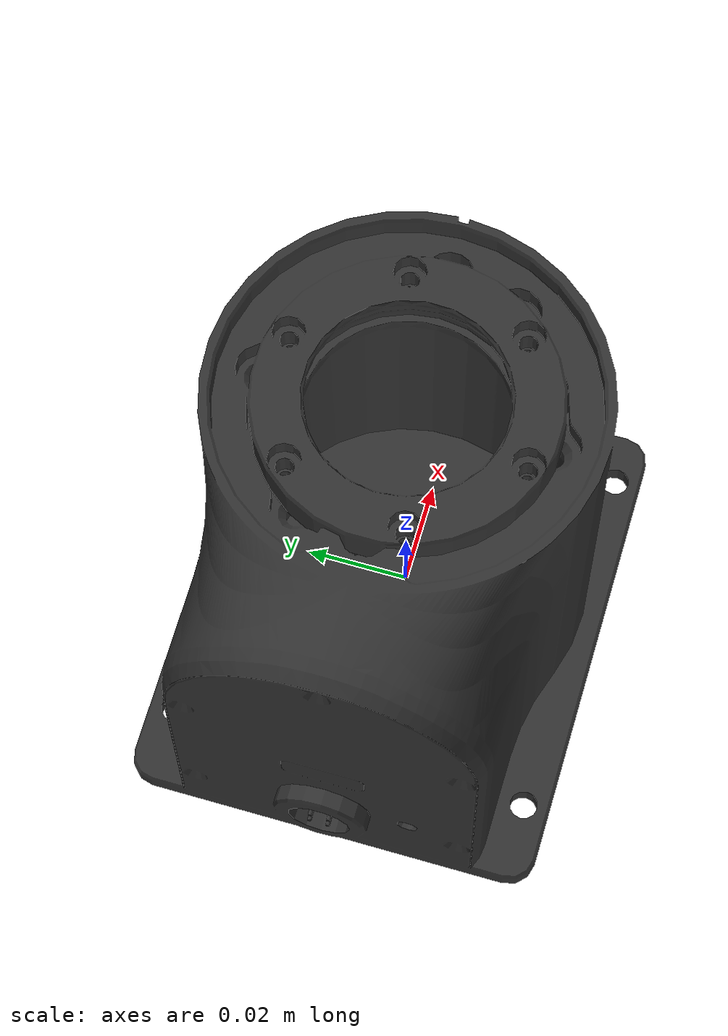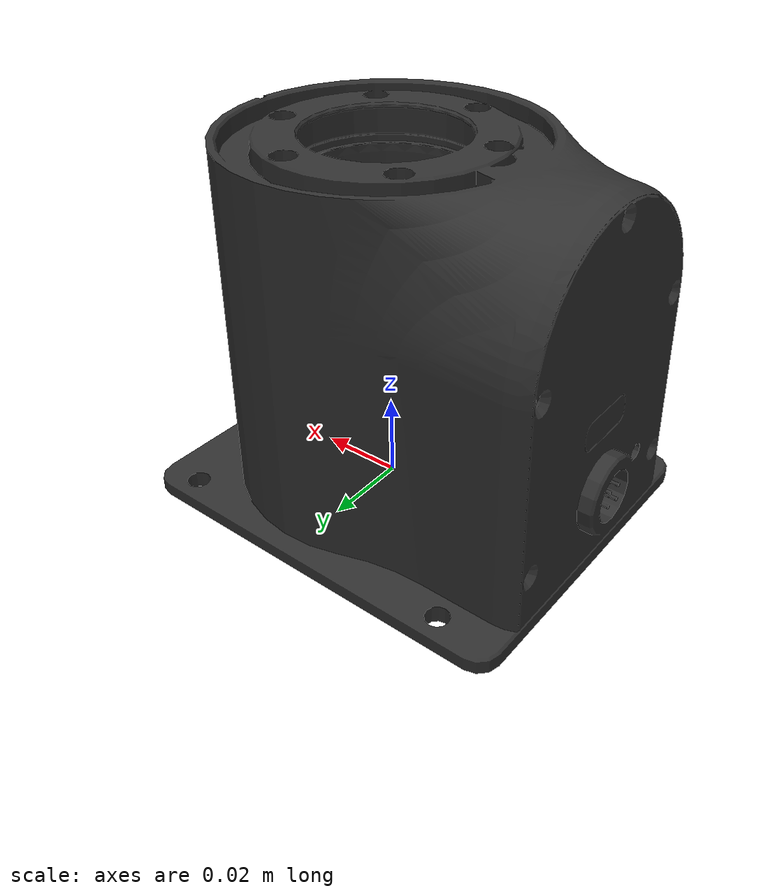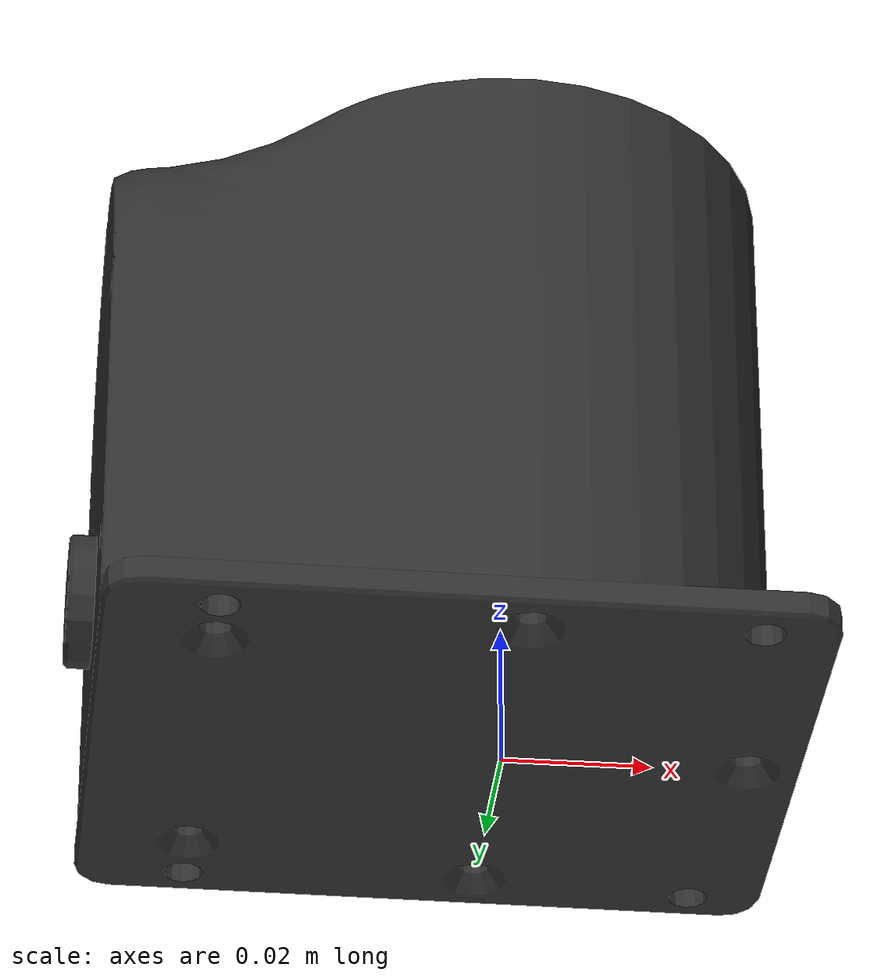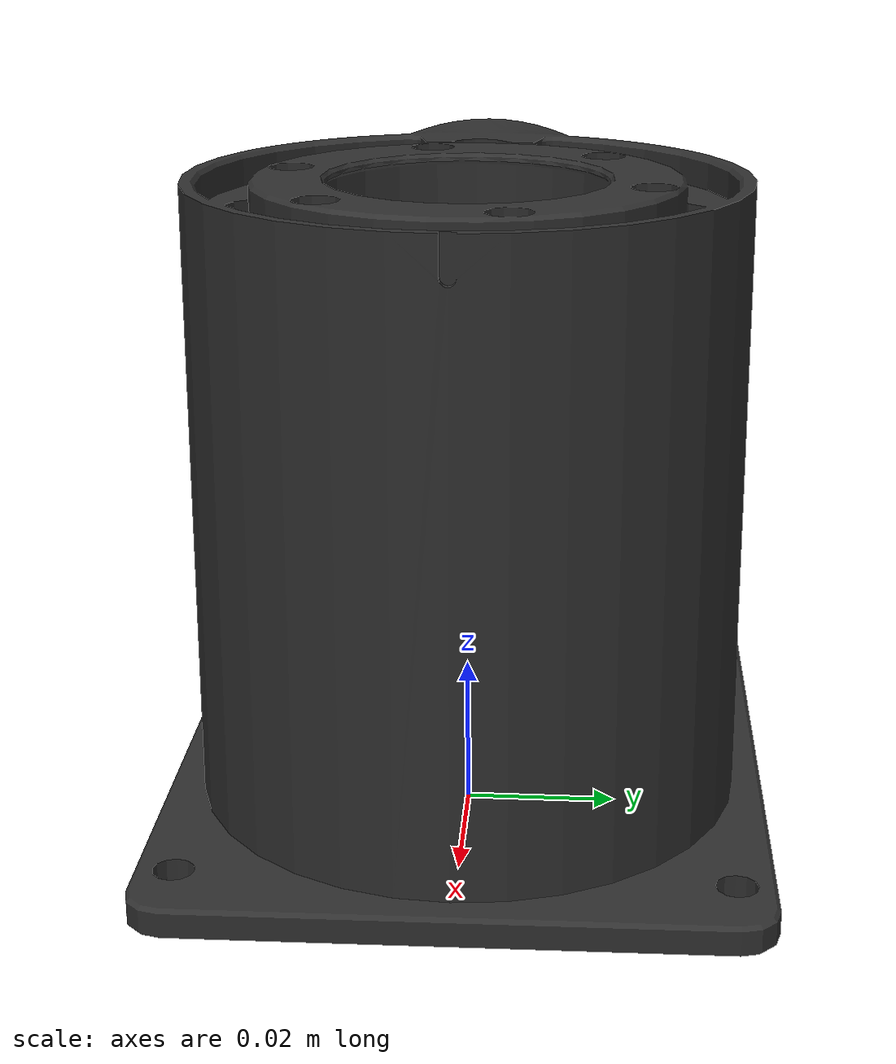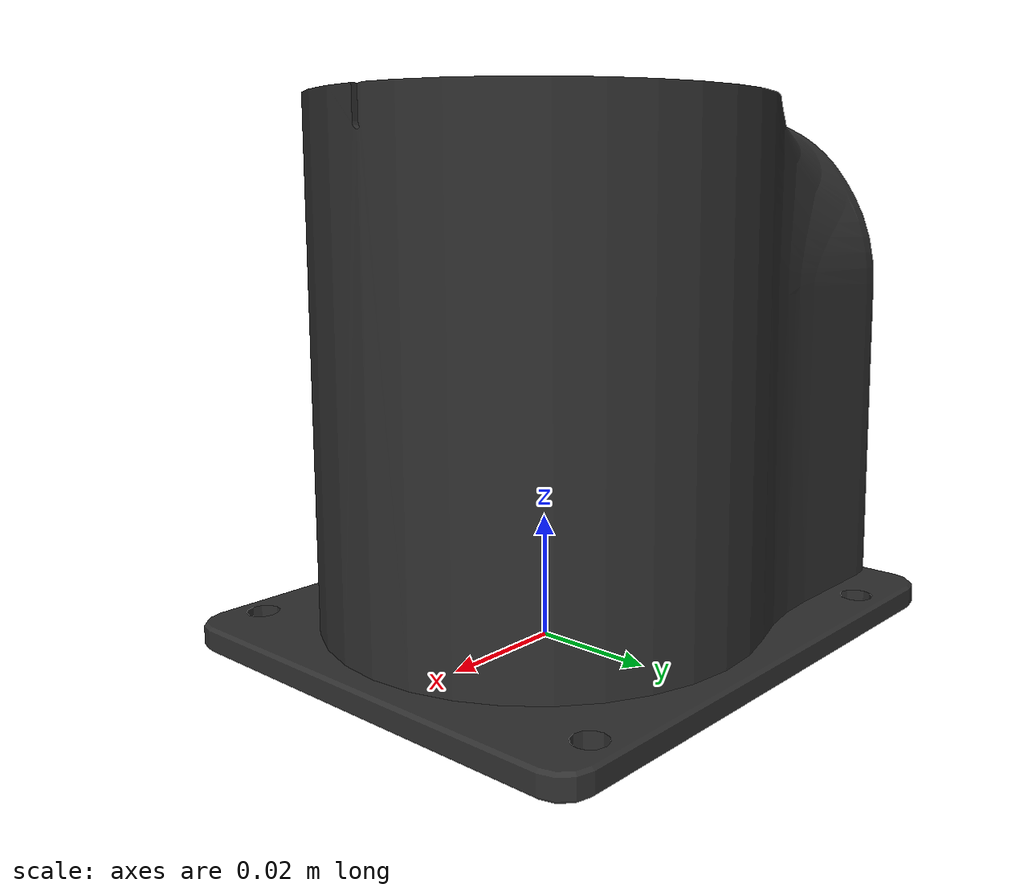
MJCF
<mujoco model="base_link">
  <default>
    <default class="visual">
      <geom group="2" type="mesh" contype="0" conaffinity="0"/>
    </default>
    <default class="collision">
      <geom group="3" type="mesh"/>
    </default>
  </default>
  <asset>
    <material name="grey_metal.003" specular="0.5" shininess="0.09604875199999999" rgba="0.191349 0.191349 0.191349 1.000000"/>
    <mesh file="base_link.obj"/>
    <mesh file="base_link_collision_0.obj"/>
    <mesh file="base_link_collision_1.obj"/>
    <mesh file="base_link_collision_2.obj"/>
    <mesh file="base_link_collision_3.obj"/>
    <mesh file="base_link_collision_4.obj"/>
  </asset>
  <worldbody>
    <body name="base_link">
      <geom material="grey_metal.003" mesh="base_link" class="visual"/>
      <geom mesh="base_link_collision_0" rgba="0.6054538695194996 0.6497463008647846 0.3677920183674308 1" class="collision"/>
      <geom mesh="base_link_collision_1" rgba="0.37324823623244063 0.23384243716594144 0.8764772061962577 1" class="collision"/>
      <geom mesh="base_link_collision_2" rgba="0.9146370442737517 0.4617793588264023 0.668525033848855 1" class="collision"/>
      <geom mesh="base_link_collision_3" rgba="0.23939556494472325 0.9169221578177233 0.13953980005514488 1" class="collision"/>
      <geom mesh="base_link_collision_4" rgba="0.6154124328250679 0.031102191676676383 0.6313211907529422 1" class="collision"/>
    </body>
  </worldbody>
</mujoco>
